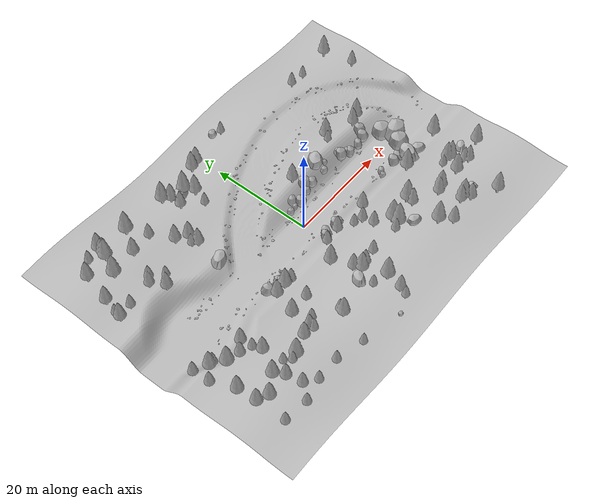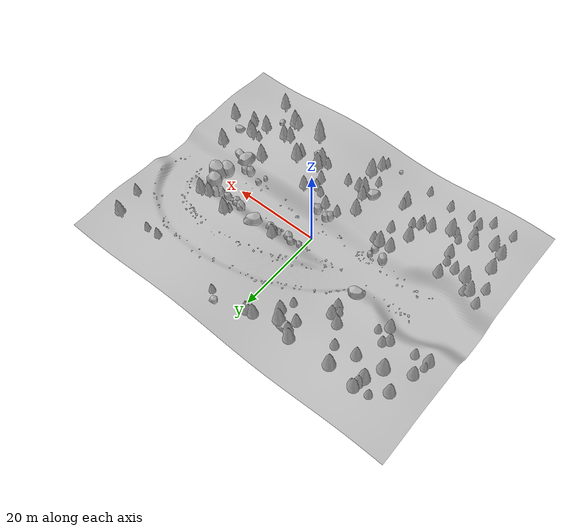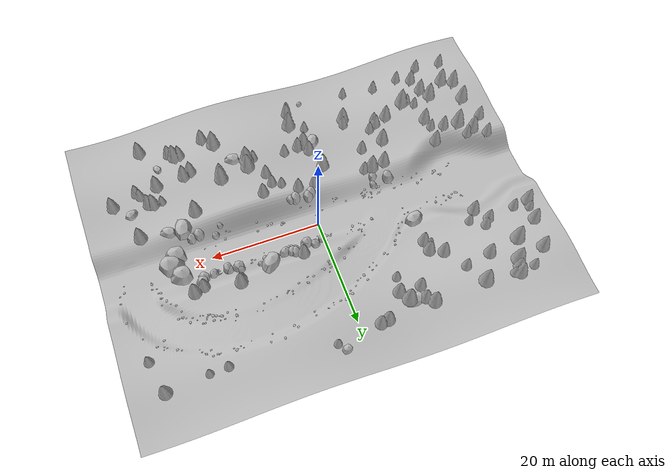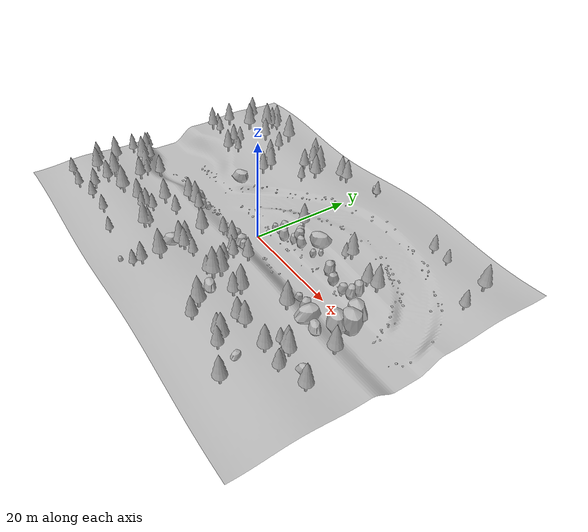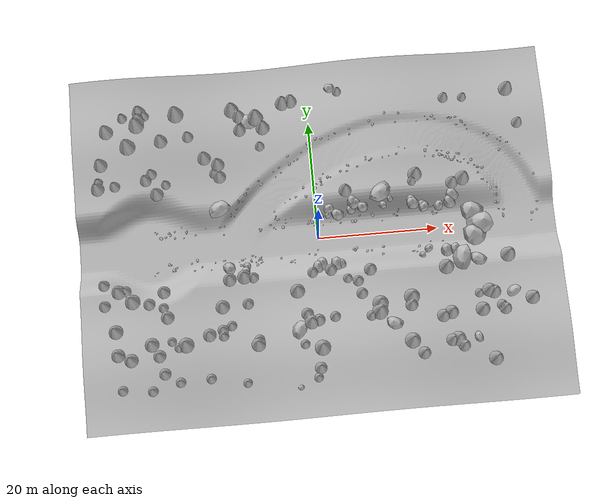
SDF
<sdf version="1.9">
 <world name="nomad_forest">
  <model name="terrain">
   <static>true</static>
   <link name="link">
    <visual name="visual">
     <geometry><mesh><uri>../assets/geometry/terrain.obj</uri><scale>1 1 1</scale></mesh></geometry>
    </visual>
    <collision name="rock">
     <geometry><mesh><uri>../assets/geometry/terrain.obj</uri><scale>1 1 1</scale></mesh></geometry>
    </collision>
   </link>
  </model>
  <model name="end_rock_123">
   <static>true</static>
   <pose>26 -2 0 0 0 6.105915704942869</pose>
   <link name="link">
    <visual name="visual">
     <geometry><mesh><uri>../assets/models/rock.obj</uri><scale>3.5 3.5 3.5</scale></mesh></geometry>
    </visual>
    <collision name="rock">
     <geometry><mesh><uri>../assets/models/rock.obj</uri><scale>3.5 3.5 3.5</scale></mesh></geometry>
    </collision>
   </link>
  </model>
  <model name="end_rock_124">
   <static>true</static>
   <pose>27 0 0 0 0 3.37580484232141</pose>
   <link name="link">
    <visual name="visual">
     <geometry><mesh><uri>../assets/models/rock.obj</uri><scale>4 4 4</scale></mesh></geometry>
    </visual>
    <collision name="rock">
     <geometry><mesh><uri>../assets/models/rock.obj</uri><scale>4 4 4</scale></mesh></geometry>
    </collision>
   </link>
  </model>
  <model name="end_rock_125">
   <static>true</static>
   <pose>26 2 0 0 0 6.146045231546077</pose>
   <link name="link">
    <visual name="visual">
     <geometry><mesh><uri>../assets/models/rock.obj</uri><scale>3.5 3.5 3.5</scale></mesh></geometry>
    </visual>
    <collision name="rock">
     <geometry><mesh><uri>../assets/models/rock.obj</uri><scale>3.5 3.5 3.5</scale></mesh></geometry>
    </collision>
   </link>
  </model>
  <model name="side_rock_126">
   <static>true</static>
   <pose>7.758293500045639 4.244106952199305 1.2629773165934748 0 0 0.2897931745988684</pose>
   <link name="link">
    <visual name="visual">
     <geometry>
      <mesh>
       <uri>../assets/models/rock.obj</uri>
       <scale>1.6939180261850124 1.6939180261850124 2.202093434040516</scale>
      </mesh>
     </geometry>
    </visual>
    <collision name="rock">
     <geometry>
      <mesh>
       <uri>../assets/models/rock.obj</uri>
       <scale>1.6939180261850124 1.6939180261850124 2.202093434040516</scale>
      </mesh>
     </geometry>
    </collision>
   </link>
  </model>
  <model name="side_rock_128">
   <static>true</static>
   <pose>5.7795512402672635 4.016295468732414 1.007100706837313 0 0 5.684243614387758</pose>
   <link name="link">
    <visual name="visual">
     <geometry>
      <mesh>
       <uri>../assets/models/rock.obj</uri>
       <scale>1.391628098232637 1.391628098232637 1.8091165277024281</scale>
      </mesh>
     </geometry>
    </visual>
    <collision name="rock">
     <geometry>
      <mesh>
       <uri>../assets/models/rock.obj</uri>
       <scale>1.391628098232637 1.391628098232637 1.8091165277024281</scale>
      </mesh>
     </geometry>
    </collision>
   </link>
  </model>
  <model name="side_rock_129">
   <static>true</static>
   <pose>20.506561148301344 3.596685711218175 0.5671818920548588 0 0 4.315358041387201</pose>
   <link name="link">
    <visual name="visual">
     <geometry>
      <mesh>
       <uri>../assets/models/rock.obj</uri>
       <scale>1.5424601215955778 1.5424601215955778 2.005198158074251</scale>
      </mesh>
     </geometry>
    </visual>
    <collision name="rock">
     <geometry>
      <mesh>
       <uri>../assets/models/rock.obj</uri>
       <scale>1.5424601215955778 1.5424601215955778 2.005198158074251</scale>
      </mesh>
     </geometry>
    </collision>
   </link>
  </model>
  <model name="side_rock_130">
   <static>true</static>
   <pose>18.061007431074742 3.6443569802254645 0.6529771488999897 0 0 1.6089619913810802</pose>
   <link name="link">
    <visual name="visual">
     <geometry>
      <mesh>
       <uri>../assets/models/rock.obj</uri>
       <scale>1.7351123936490125 1.7351123936490125 2.255646111743716</scale>
      </mesh>
     </geometry>
    </visual>
    <collision name="rock">
     <geometry>
      <mesh>
       <uri>../assets/models/rock.obj</uri>
       <scale>1.7351123936490125 1.7351123936490125 2.255646111743716</scale>
      </mesh>
     </geometry>
    </collision>
   </link>
  </model>
  <model name="side_rock_131">
   <static>true</static>
   <pose>11.23198338505997 4.378443012322365 1.427508488410775 0 0 2.7675846570711773</pose>
   <link name="link">
    <visual name="visual">
     <geometry>
      <mesh>
       <uri>../assets/models/rock.obj</uri>
       <scale>1.2035781227192894 1.2035781227192894 1.5646515595350763</scale>
      </mesh>
     </geometry>
    </visual>
    <collision name="rock">
     <geometry>
      <mesh>
       <uri>../assets/models/rock.obj</uri>
       <scale>1.2035781227192894 1.2035781227192894 1.5646515595350763</scale>
      </mesh>
     </geometry>
    </collision>
   </link>
  </model>
  <model name="side_rock_132">
   <static>true</static>
   <pose>17.842496307105442 3.993680445049477 0.9452750162484636 0 0 0.08446521569186297</pose>
   <link name="link">
    <visual name="visual">
     <geometry>
      <mesh>
       <uri>../assets/models/rock.obj</uri>
       <scale>1.3140993271787589 1.3140993271787589 1.7083291253323867</scale>
      </mesh>
     </geometry>
    </visual>
    <collision name="rock">
     <geometry>
      <mesh>
       <uri>../assets/models/rock.obj</uri>
       <scale>1.3140993271787589 1.3140993271787589 1.7083291253323867</scale>
      </mesh>
     </geometry>
    </collision>
   </link>
  </model>
  <model name="side_rock_133">
   <static>true</static>
   <pose>6.331982924209228 4.848564951944356 1.8052449894355684 0 0 3.7838162783715625</pose>
   <link name="link">
    <visual name="visual">
     <geometry>
      <mesh>
       <uri>../assets/models/rock.obj</uri>
       <scale>1.782034144490893 1.782034144490893 2.316644387838161</scale>
      </mesh>
     </geometry>
    </visual>
    <collision name="rock">
     <geometry>
      <mesh>
       <uri>../assets/models/rock.obj</uri>
       <scale>1.782034144490893 1.782034144490893 2.316644387838161</scale>
      </mesh>
     </geometry>
    </collision>
   </link>
  </model>
  <model name="side_rock_134">
   <static>true</static>
   <pose>-0.5498905627773922 -5.389941133891658 1.8034673684201368 0 0 4.786131921909398</pose>
   <link name="link">
    <visual name="visual">
     <geometry>
      <mesh>
       <uri>../assets/models/rock.obj</uri>
       <scale>1.7913305866405653 1.7913305866405653 2.328729762632735</scale>
      </mesh>
     </geometry>
    </visual>
    <collision name="rock">
     <geometry>
      <mesh>
       <uri>../assets/models/rock.obj</uri>
       <scale>1.7913305866405653 1.7913305866405653 2.328729762632735</scale>
      </mesh>
     </geometry>
    </collision>
   </link>
  </model>
  <model name="side_rock_136">
   <static>true</static>
   <pose>16.164457268691628 4.155770137918094 1.1356621550395745 0 0 5.805291946573451</pose>
   <link name="link">
    <visual name="visual">
     <geometry>
      <mesh>
       <uri>../assets/models/rock.obj</uri>
       <scale>1.985143196972972 1.985143196972972 2.5806861560648637</scale>
      </mesh>
     </geometry>
    </visual>
    <collision name="rock">
     <geometry>
      <mesh>
       <uri>../assets/models/rock.obj</uri>
       <scale>1.985143196972972 1.985143196972972 2.5806861560648637</scale>
      </mesh>
     </geometry>
    </collision>
   </link>
  </model>
  <model name="side_rock_137">
   <static>true</static>
   <pose>-12.207302243680124 -3.8434888443223416 0.5056021521233842 0 0 2.6343907217029408</pose>
   <link name="link">
    <visual name="visual">
     <geometry>
      <mesh>
       <uri>../assets/models/rock.obj</uri>
       <scale>1.1997395288395514 1.1997395288395514 1.559661387491417</scale>
      </mesh>
     </geometry>
    </visual>
    <collision name="rock">
     <geometry>
      <mesh>
       <uri>../assets/models/rock.obj</uri>
       <scale>1.1997395288395514 1.1997395288395514 1.559661387491417</scale>
      </mesh>
     </geometry>
    </collision>
   </link>
  </model>
  <model name="side_rock_139">
   <static>true</static>
   <pose>22.33782907106142 3.937533952044066 0.7618567425244698 0 0 5.256479519956919</pose>
   <link name="link">
    <visual name="visual">
     <geometry>
      <mesh>
       <uri>../assets/models/rock.obj</uri>
       <scale>1.987898791319266 1.987898791319266 2.584268428715046</scale>
      </mesh>
     </geometry>
    </visual>
    <collision name="rock">
     <geometry>
      <mesh>
       <uri>../assets/models/rock.obj</uri>
       <scale>1.987898791319266 1.987898791319266 2.584268428715046</scale>
      </mesh>
     </geometry>
    </collision>
   </link>
  </model>
  <model name="side_rock_140">
   <static>true</static>
   <pose>0.10069778737004853 -4.922043360239098 1.524034760465531 0 0 4.758588849861327</pose>
   <link name="link">
    <visual name="visual">
     <geometry>
      <mesh>
       <uri>../assets/models/rock.obj</uri>
       <scale>1.926061353225418 1.926061353225418 2.5038797591930435</scale>
      </mesh>
     </geometry>
    </visual>
    <collision name="rock">
     <geometry>
      <mesh>
       <uri>../assets/models/rock.obj</uri>
       <scale>1.926061353225418 1.926061353225418 2.5038797591930435</scale>
      </mesh>
     </geometry>
    </collision>
   </link>
  </model>
  <model name="side_rock_141">
   <static>true</static>
   <pose>3.3998806672970225 -5.215631388239739 1.972737552952764 0 0 5.2668224050321895</pose>
   <link name="link">
    <visual name="visual">
     <geometry>
      <mesh>
       <uri>../assets/models/rock.obj</uri>
       <scale>1.4305560615197843 1.4305560615197843 1.8597228799757197</scale>
      </mesh>
     </geometry>
    </visual>
    <collision name="rock">
     <geometry>
      <mesh>
       <uri>../assets/models/rock.obj</uri>
       <scale>1.4305560615197843 1.4305560615197843 1.8597228799757197</scale>
      </mesh>
     </geometry>
    </collision>
   </link>
  </model>
  <model name="side_rock_144">
   <static>true</static>
   <pose>2.5275699029761647 -5.17147480723139 1.8789270946557162 0 0 4.995026220127746</pose>
   <link name="link">
    <visual name="visual">
     <geometry>
      <mesh>
       <uri>../assets/models/rock.obj</uri>
       <scale>1.9469834250974234 1.9469834250974234 2.5310784526266503</scale>
      </mesh>
     </geometry>
    </visual>
    <collision name="rock">
     <geometry>
      <mesh>
       <uri>../assets/models/rock.obj</uri>
       <scale>1.9469834250974234 1.9469834250974234 2.5310784526266503</scale>
      </mesh>
     </geometry>
    </collision>
   </link>
  </model>
  <model name="side_rock_146">
   <static>true</static>
   <pose>22.402508024657074 -4.1563826738480305 0.9194268820245914 0 0 4.9414882570378245</pose>
   <link name="link">
    <visual name="visual">
     <geometry>
      <mesh>
       <uri>../assets/models/rock.obj</uri>
       <scale>1.7099577911706647 1.7099577911706647 2.222945128521864</scale>
      </mesh>
     </geometry>
    </visual>
    <collision name="rock">
     <geometry>
      <mesh>
       <uri>../assets/models/rock.obj</uri>
       <scale>1.7099577911706647 1.7099577911706647 2.222945128521864</scale>
      </mesh>
     </geometry>
    </collision>
   </link>
  </model>
  <model name="side_rock_148">
   <static>true</static>
   <pose>22.42673056533767 -4.157459403072925 0.9192855444617416 0 0 4.215299121763038</pose>
   <link name="link">
    <visual name="visual">
     <geometry>
      <mesh>
       <uri>../assets/models/rock.obj</uri>
       <scale>1.5422127822544338 1.5422127822544338 2.004876616930764</scale>
      </mesh>
     </geometry>
    </visual>
    <collision name="rock">
     <geometry>
      <mesh>
       <uri>../assets/models/rock.obj</uri>
       <scale>1.5422127822544338 1.5422127822544338 2.004876616930764</scale>
      </mesh>
     </geometry>
    </collision>
   </link>
  </model>
  <model name="side_rock_150">
   <static>true</static>
   <pose>-12.563836168401586 -5.109615813841257 1.169196350899508 0 0 4.575592750090239</pose>
   <link name="link">
    <visual name="visual">
     <geometry>
      <mesh>
       <uri>../assets/models/rock.obj</uri>
       <scale>1.5582215842398193 1.5582215842398193 2.025688059511765</scale>
      </mesh>
     </geometry>
    </visual>
    <collision name="rock">
     <geometry>
      <mesh>
       <uri>../assets/models/rock.obj</uri>
       <scale>1.5582215842398193 1.5582215842398193 2.025688059511765</scale>
      </mesh>
     </geometry>
    </collision>
   </link>
  </model>
  <model name="side_rock_151">
   <static>true</static>
   <pose>6.059455158316986 5.093364889445585 2.0184536363196703 0 0 5.1407355942653155</pose>
   <link name="link">
    <visual name="visual">
     <geometry>
      <mesh>
       <uri>../assets/models/rock.obj</uri>
       <scale>1.7353832828720208 1.7353832828720208 2.255998267733627</scale>
      </mesh>
     </geometry>
    </visual>
    <collision name="rock">
     <geometry>
      <mesh>
       <uri>../assets/models/rock.obj</uri>
       <scale>1.7353832828720208 1.7353832828720208 2.255998267733627</scale>
      </mesh>
     </geometry>
    </collision>
   </link>
  </model>
  <model name="side_rock_152">
   <static>true</static>
   <pose>2.0639577026377935 4.504718699866553 1.303952977048582 0 0 3.49937147903555</pose>
   <link name="link">
    <visual name="visual">
     <geometry>
      <mesh>
       <uri>../assets/models/rock.obj</uri>
       <scale>1.514919156346617 1.514919156346617 1.969394903250602</scale>
      </mesh>
     </geometry>
    </visual>
    <collision name="rock">
     <geometry>
      <mesh>
       <uri>../assets/models/rock.obj</uri>
       <scale>1.514919156346617 1.514919156346617 1.969394903250602</scale>
      </mesh>
     </geometry>
    </collision>
   </link>
  </model>
  <model name="side_rock_153">
   <static>true</static>
   <pose>15.890667808545366 4.91545820387643 1.8582277558779643 0 0 2.9052456351422347</pose>
   <link name="link">
    <visual name="visual">
     <geometry>
      <mesh>
       <uri>../assets/models/rock.obj</uri>
       <scale>1.2536832897069967 1.2536832897069967 1.6297882766190959</scale>
      </mesh>
     </geometry>
    </visual>
    <collision name="rock">
     <geometry>
      <mesh>
       <uri>../assets/models/rock.obj</uri>
       <scale>1.2536832897069967 1.2536832897069967 1.6297882766190959</scale>
      </mesh>
     </geometry>
    </collision>
   </link>
  </model>
  <model name="side_rock_154">
   <static>true</static>
   <pose>12.43774583374313 5.120175295117624 2.1510553917495514 0 0 5.683510310743308</pose>
   <link name="link">
    <visual name="visual">
     <geometry>
      <mesh>
       <uri>../assets/models/rock.obj</uri>
       <scale>0.9123827819808308 0.9123827819808308 1.18609761657508</scale>
      </mesh>
     </geometry>
    </visual>
    <collision name="rock">
     <geometry>
      <mesh>
       <uri>../assets/models/rock.obj</uri>
       <scale>0.9123827819808308 0.9123827819808308 1.18609761657508</scale>
      </mesh>
     </geometry>
    </collision>
   </link>
  </model>
  <model name="side_rock_156">
   <static>true</static>
   <pose>20.973555962757835 -4.338063547699383 1.1189702009145557 0 0 5.216431888880103</pose>
   <link name="link">
    <visual name="visual">
     <geometry>
      <mesh>
       <uri>../assets/models/rock.obj</uri>
       <scale>1.913333306023206 1.913333306023206 2.487333297830168</scale>
      </mesh>
     </geometry>
    </visual>
    <collision name="rock">
     <geometry>
      <mesh>
       <uri>../assets/models/rock.obj</uri>
       <scale>1.913333306023206 1.913333306023206 2.487333297830168</scale>
      </mesh>
     </geometry>
    </collision>
   </link>
  </model>
  <model name="side_rock_158">
   <static>true</static>
   <pose>22.819550775204213 4.938170856707887 1.475494196537121 0 0 5.7181522228064585</pose>
   <link name="link">
    <visual name="visual">
     <geometry>
      <mesh>
       <uri>../assets/models/rock.obj</uri>
       <scale>1.9678837337689314 1.9678837337689314 2.558248853899611</scale>
      </mesh>
     </geometry>
    </visual>
    <collision name="rock">
     <geometry>
      <mesh>
       <uri>../assets/models/rock.obj</uri>
       <scale>1.9678837337689314 1.9678837337689314 2.558248853899611</scale>
      </mesh>
     </geometry>
    </collision>
   </link>
  </model>
  <model name="side_rock_160">
   <static>true</static>
   <pose>18.146592676656745 -3.5713764222395747 0.5954741405293552 0 0 3.842589736900204</pose>
   <link name="link">
    <visual name="visual">
     <geometry>
      <mesh>
       <uri>../assets/models/rock.obj</uri>
       <scale>1.2512799220144843 1.2512799220144843 1.6266638986188298</scale>
      </mesh>
     </geometry>
    </visual>
    <collision name="rock">
     <geometry>
      <mesh>
       <uri>../assets/models/rock.obj</uri>
       <scale>1.2512799220144843 1.2512799220144843 1.6266638986188298</scale>
      </mesh>
     </geometry>
    </collision>
   </link>
  </model>
  <model name="side_rock_162">
   <static>true</static>
   <pose>0.5424512249391853 3.5443796024462975 0.5119116853505823 0 0 2.9509796798564474</pose>
   <link name="link">
    <visual name="visual">
     <geometry>
      <mesh>
       <uri>../assets/models/rock.obj</uri>
       <scale>1.2337546790757816 1.2337546790757816 1.6038810827985162</scale>
      </mesh>
     </geometry>
    </visual>
    <collision name="rock">
     <geometry>
      <mesh>
       <uri>../assets/models/rock.obj</uri>
       <scale>1.2337546790757816 1.2337546790757816 1.6038810827985162</scale>
      </mesh>
     </geometry>
    </collision>
   </link>
  </model>
  <model name="side_rock_163">
   <static>true</static>
   <pose>16.990407036293497 -4.723949013857792 1.6346405531569146 0 0 2.7581681960844415</pose>
   <link name="link">
    <visual name="visual">
     <geometry>
      <mesh>
       <uri>../assets/models/rock.obj</uri>
       <scale>0.9830186856568854 0.9830186856568854 1.277924291353951</scale>
      </mesh>
     </geometry>
    </visual>
    <collision name="rock">
     <geometry>
      <mesh>
       <uri>../assets/models/rock.obj</uri>
       <scale>0.9830186856568854 0.9830186856568854 1.277924291353951</scale>
      </mesh>
     </geometry>
    </collision>
   </link>
  </model>
  <model name="side_rock_164">
   <static>true</static>
   <pose>3.5226651210367272 3.4201942335675617 0.48036816422439693 0 0 6.170312397828434</pose>
   <link name="link">
    <visual name="visual">
     <geometry>
      <mesh>
       <uri>../assets/models/rock.obj</uri>
       <scale>1.8899548366026129 1.8899548366026129 2.4569412875833967</scale>
      </mesh>
     </geometry>
    </visual>
    <collision name="rock">
     <geometry>
      <mesh>
       <uri>../assets/models/rock.obj</uri>
       <scale>1.8899548366026129 1.8899548366026129 2.4569412875833967</scale>
      </mesh>
     </geometry>
    </collision>
   </link>
  </model>
  <model name="side_rock_166">
   <static>true</static>
   <pose>-15.13426124067178 -4.096870388410206 0.6764069856244216 0 0 2.3413430779007065</pose>
   <link name="link">
    <visual name="visual">
     <geometry>
      <mesh>
       <uri>../assets/models/rock.obj</uri>
       <scale>1.9952796784823037 1.9952796784823037 2.593863582026995</scale>
      </mesh>
     </geometry>
    </visual>
    <collision name="rock">
     <geometry>
      <mesh>
       <uri>../assets/models/rock.obj</uri>
       <scale>1.9952796784823037 1.9952796784823037 2.593863582026995</scale>
      </mesh>
     </geometry>
    </collision>
   </link>
  </model>
  <model name="side_rock_167">
   <static>true</static>
   <pose>1.910530771013164 3.63947440437092 0.6069328589827097 0 0 3.7993857181105413</pose>
   <link name="link">
    <visual name="visual">
     <geometry>
      <mesh>
       <uri>../assets/models/rock.obj</uri>
       <scale>1.0169722452138954 1.0169722452138954 1.322063918778064</scale>
      </mesh>
     </geometry>
    </visual>
    <collision name="rock">
     <geometry>
      <mesh>
       <uri>../assets/models/rock.obj</uri>
       <scale>1.0169722452138954 1.0169722452138954 1.322063918778064</scale>
      </mesh>
     </geometry>
    </collision>
   </link>
  </model>
  <model name="landmark_169">
   <static>true</static>
   <pose>-5 -25 2.0375764705082284 0 0 0.4</pose>
   <link name="link">
    <visual name="visual">
     <geometry><mesh><uri>../assets/models/rock.obj</uri><scale>0.9 0.9 0.9</scale></mesh></geometry>
    </visual>
    <collision name="rock">
     <geometry><mesh><uri>../assets/models/rock.obj</uri><scale>0.9 0.9 0.9</scale></mesh></geometry>
    </collision>
   </link>
  </model>
  <model name="landmark_170">
   <static>true</static>
   <pose>4 25 2.994306158938109 0 0 0.4</pose>
   <link name="link">
    <visual name="visual">
     <geometry><mesh><uri>../assets/models/rock.obj</uri><scale>1.6 1.6 1.6</scale></mesh></geometry>
    </visual>
    <collision name="rock">
     <geometry><mesh><uri>../assets/models/rock.obj</uri><scale>1.6 1.6 1.6</scale></mesh></geometry>
    </collision>
   </link>
  </model>
  <model name="boulder_171">
   <static>true</static>
   <pose>31.246857102444224 -12.046881070972038 1.7320630154276768 0 0 3.705122300647268</pose>
   <link name="link">
    <visual name="visual">
     <geometry>
      <mesh>
       <uri>../assets/models/rock.obj</uri>
       <scale>2.1925922285517756 1.7540737828414206 1.5348145599862428</scale>
      </mesh>
     </geometry>
    </visual>
    <collision name="rock">
     <geometry>
      <mesh>
       <uri>../assets/models/rock.obj</uri>
       <scale>2.1925922285517756 1.7540737828414206 1.5348145599862428</scale>
      </mesh>
     </geometry>
    </collision>
   </link>
  </model>
  <model name="boulder_172">
   <static>true</static>
   <pose>23.315582396648757 -5.839361185939822 1.9958384109255487 0 0 4.577373736484286</pose>
   <link name="link">
    <visual name="visual">
     <geometry>
      <mesh>
       <uri>../assets/models/rock.obj</uri>
       <scale>3.850163016444274 3.0801304131554197 2.695114111510992</scale>
      </mesh>
     </geometry>
    </visual>
    <collision name="rock">
     <geometry>
      <mesh>
       <uri>../assets/models/rock.obj</uri>
       <scale>3.850163016444274 3.0801304131554197 2.695114111510992</scale>
      </mesh>
     </geometry>
    </collision>
   </link>
  </model>
  <model name="boulder_175">
   <static>true</static>
   <pose>11.028143671920589 -16.09418020079367 3.6821050800513286 0 0 5.990575862730309</pose>
   <link name="link">
    <visual name="visual">
     <geometry>
      <mesh>
       <uri>../assets/models/rock.obj</uri>
       <scale>2.5187147921250173 2.014971833700014 1.763100354487512</scale>
      </mesh>
     </geometry>
    </visual>
    <collision name="rock">
     <geometry>
      <mesh>
       <uri>../assets/models/rock.obj</uri>
       <scale>2.5187147921250173 2.014971833700014 1.763100354487512</scale>
      </mesh>
     </geometry>
    </collision>
   </link>
  </model>
  <model name="boulder_178">
   <static>true</static>
   <pose>25.99159522151824 -6.30813460697944 1.9372508334762637 0 0 5.878078205382223</pose>
   <link name="link">
    <visual name="visual">
     <geometry>
      <mesh>
       <uri>../assets/models/rock.obj</uri>
       <scale>2.5358820891067984 2.0287056712854388 1.7751174623747588</scale>
      </mesh>
     </geometry>
    </visual>
    <collision name="rock">
     <geometry>
      <mesh>
       <uri>../assets/models/rock.obj</uri>
       <scale>2.5358820891067984 2.0287056712854388 1.7751174623747588</scale>
      </mesh>
     </geometry>
    </collision>
   </link>
  </model>
  <model name="boulder_179">
   <static>true</static>
   <pose>10.886919192133469 6.079579399539696 2.9363200315960456 0 0 0.8023220716256065</pose>
   <link name="link">
    <visual name="visual">
     <geometry>
      <mesh>
       <uri>../assets/models/rock.obj</uri>
       <scale>3.588380899586684 2.8707047196693476 2.5118666297106786</scale>
      </mesh>
     </geometry>
    </visual>
    <collision name="rock">
     <geometry>
      <mesh>
       <uri>../assets/models/rock.obj</uri>
       <scale>3.588380899586684 2.8707047196693476 2.5118666297106786</scale>
      </mesh>
     </geometry>
    </collision>
   </link>
  </model>
  <model name="boulder_181">
   <static>true</static>
   <pose>-4.421268467546145 -15.52158892024394 2.3612247266685147 0 0 4.205197216302796</pose>
   <link name="link">
    <visual name="visual">
     <geometry>
      <mesh>
       <uri>../assets/models/rock.obj</uri>
       <scale>2.8960546185841465 2.3168436948673174 2.0272382330089025</scale>
      </mesh>
     </geometry>
    </visual>
    <collision name="rock">
     <geometry>
      <mesh>
       <uri>../assets/models/rock.obj</uri>
       <scale>2.8960546185841465 2.3168436948673174 2.0272382330089025</scale>
      </mesh>
     </geometry>
    </collision>
   </link>
  </model>
  <model name="boulder_184">
   <static>true</static>
   <pose>24.538102639446606 -19.331854413639405 2.711431191756619 0 0 5.095106693673696</pose>
   <link name="link">
    <visual name="visual">
     <geometry>
      <mesh>
       <uri>../assets/models/rock.obj</uri>
       <scale>1.7014249989622106 1.3611399991697686 1.1909974992735473</scale>
      </mesh>
     </geometry>
    </visual>
    <collision name="rock">
     <geometry>
      <mesh>
       <uri>../assets/models/rock.obj</uri>
       <scale>1.7014249989622106 1.3611399991697686 1.1909974992735473</scale>
      </mesh>
     </geometry>
    </collision>
   </link>
  </model>
  <model name="boulder_186">
   <static>true</static>
   <pose>-9.946855639517064 20.503367327052203 2.1645192001154117 0 0 0.11754095517545536</pose>
   <link name="link">
    <visual name="visual">
     <geometry>
      <mesh>
       <uri>../assets/models/rock.obj</uri>
       <scale>3.1468419449007747 2.51747355592062 2.202789361430542</scale>
      </mesh>
     </geometry>
    </visual>
    <collision name="rock">
     <geometry>
      <mesh>
       <uri>../assets/models/rock.obj</uri>
       <scale>3.1468419449007747 2.51747355592062 2.202789361430542</scale>
      </mesh>
     </geometry>
    </collision>
   </link>
  </model>
  <model name="boulder_187">
   <static>true</static>
   <pose>-16.130046495548335 5.972065093114338 1.6833083801588486 0 0 3.6402295238774953</pose>
   <link name="link">
    <visual name="visual">
     <geometry>
      <mesh>
       <uri>../assets/models/rock.obj</uri>
       <scale>3.311009809719344 2.6488078477754753 2.3177068668035408</scale>
      </mesh>
     </geometry>
    </visual>
    <collision name="rock">
     <geometry>
      <mesh>
       <uri>../assets/models/rock.obj</uri>
       <scale>3.311009809719344 2.6488078477754753 2.3177068668035408</scale>
      </mesh>
     </geometry>
    </collision>
   </link>
  </model>
  <model name="forest_clusters">
   <static>true</static>
   <link name="link">
    <visual name="visual">
     <geometry><mesh><uri>../assets/geometry/forest_clusters.obj</uri><scale>1 1 1</scale></mesh></geometry>
    </visual>
   </link>
  </model>
  <model name="fallen_wood_and_stones">
   <static>true</static>
   <link name="link">
    <visual name="visual">
     <geometry><mesh><uri>../assets/geometry/roadside_details.obj</uri><scale>1 1 1</scale></mesh></geometry>
    </visual>
   </link>
  </model>
 </world>
</sdf>
